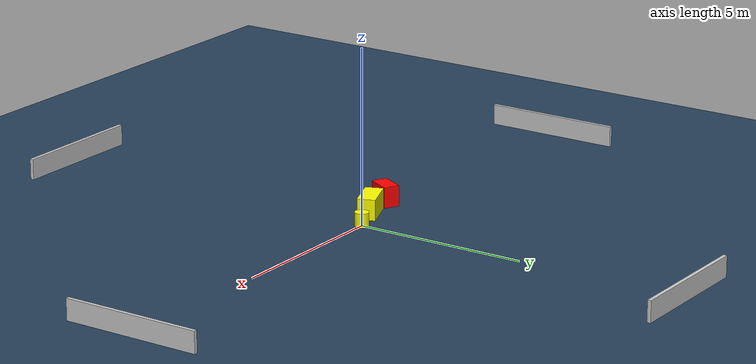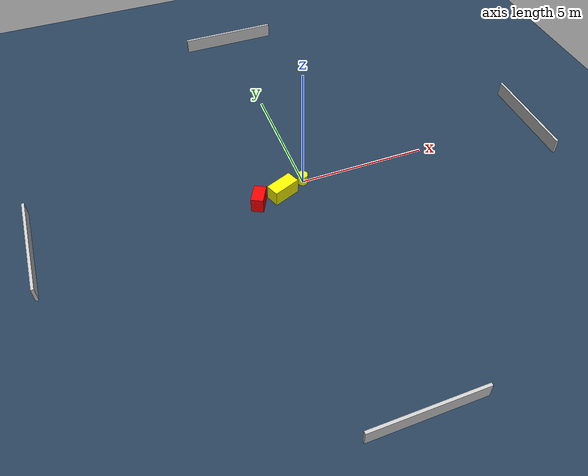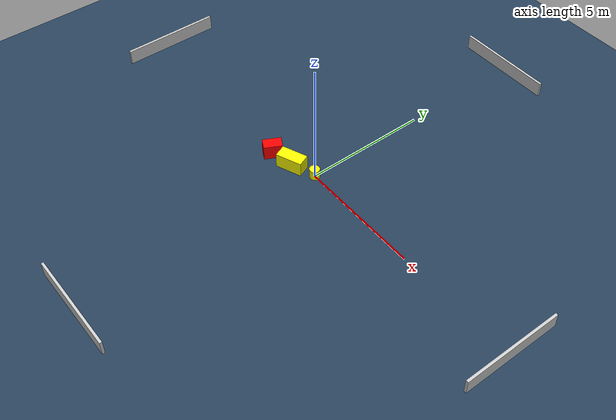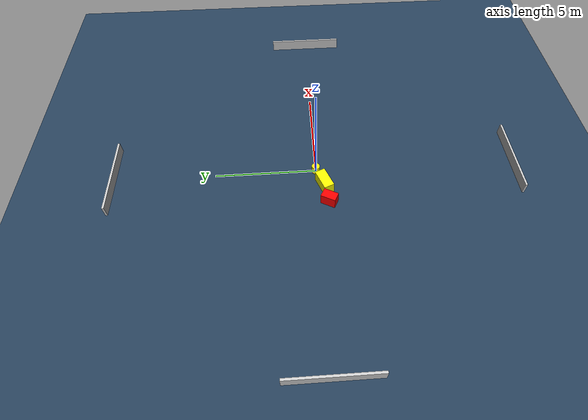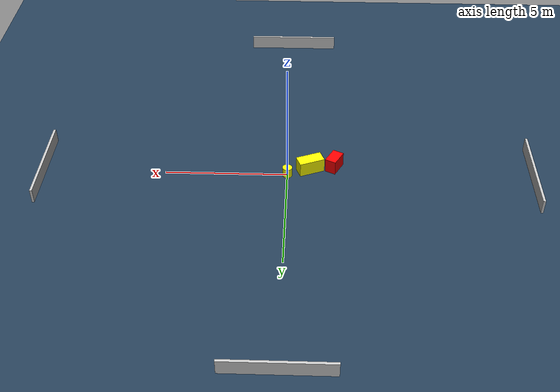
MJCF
<?xml version="1.0" ?>
<mujoco model="generated_environment">
  <option timestep="0.01" integrator="RK4" cone="elliptic"/>
  <default>
    <geom density="1"/>
  </default>
  <asset>
    <texture builtin="gradient" height="3072" name="skybox" rgb1="0.3 0.5 0.7" rgb2="0 0 0" type="skybox" width="512"/>
    <texture builtin="checker" height="300" name="groundplane" rgb1="0.2 0.3 0.4" rgb2="0.1 0.2 0.3" type="2d" width="300"/>
    <material name="groundplane" reflectance="0.2" texrepeat="5 5" texture="groundplane"/>
  </asset>
  <worldbody>
    <light dir="0 0 -1" directional="true" pos="0 0 1.5"/>
    <geom condim="3" friction="0.5 0.005 0.001" material="groundplane" name="floor" pos="0 0 0" size="0 0 0.05" type="plane"/>
    <body name="walls">
      <geom name="wall_1" condim="4" pos="-10.0 0.0 0.3" rgba="0.800000011920929 0.800000011920929 0.800000011920929 1.0" size="0.05 2.0 0.3" type="box"/>
      <geom name="wall_2" condim="4" pos="10.0 0.0 0.3" rgba="0.800000011920929 0.800000011920929 0.800000011920929 1.0" size="0.05 2.0 0.3" type="box"/>
      <geom name="wall_3" condim="4" pos="0.0 -10.0 0.3" rgba="0.800000011920929 0.800000011920929 0.800000011920929 1.0" size="2.0 0.05 0.3" type="box"/>
      <geom name="wall_4" condim="4" pos="0.0 10.0 0.3" rgba="0.800000011920929 0.800000011920929 0.800000011920929 1.0" size="2.0 0.05 0.3" type="box"/>
    </body>
    <body name="robot">
      <joint name="joint_x" type="slide" pos="0 0 0" axis="1 0 0"/>
      <joint name="joint_y" type="slide" pos="0 0 0" axis="0 1 0"/>
      <geom name="robot" type="cylinder" pos="0.0 0.0 0.2" size="0.2 0.2 0.0" mass="5.0" friction="1.0 0.005 0.0001" condim="4" rgba="1.0 1.0 0.0 1.0"/>
    </body>
    <body name="obstacle_1_movable">
      <geom name="obstacle_1_movable" condim="4" pos="-0.9271123038373181 -0.36067201382297226 0.3" euler="0 0 21.893754920048252" friction="0.0 0.005 0.001" rgba="1.0 1.0 0.0 1.0" size="0.5289239430232555 0.25735848653871773 0.3" type="box" mass="0.1"/>
      <joint type="free"/>
    </body>
    <body name="obstacle_2_static">
      <geom name="obstacle_2_static" condim="4" pos="-1.9178808401959921 -0.5292278631874335 0.3" euler="0 0 332.17723665898217" friction="0.0 0.005 0.001" rgba="1.0 0.0 0.0 1.0" size="0.23049511028549083 0.3653463984584064 0.3" type="box"/>
    </body>
  </worldbody>
  <actuator>
    <motor name="actuator_x" joint="joint_x" gear="1" ctrlrange="-1 1"/>
    <motor name="actuator_y" joint="joint_y" gear="1" ctrlrange="-1 1"/>
  </actuator>
</mujoco>
